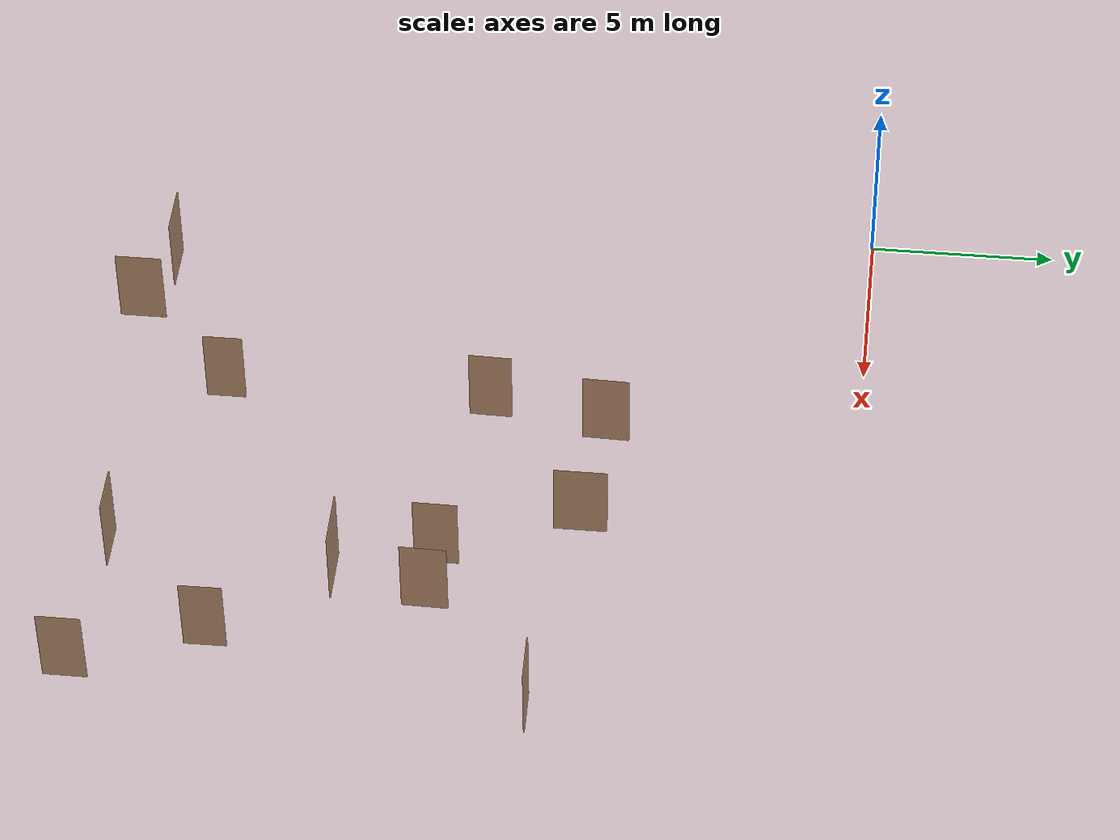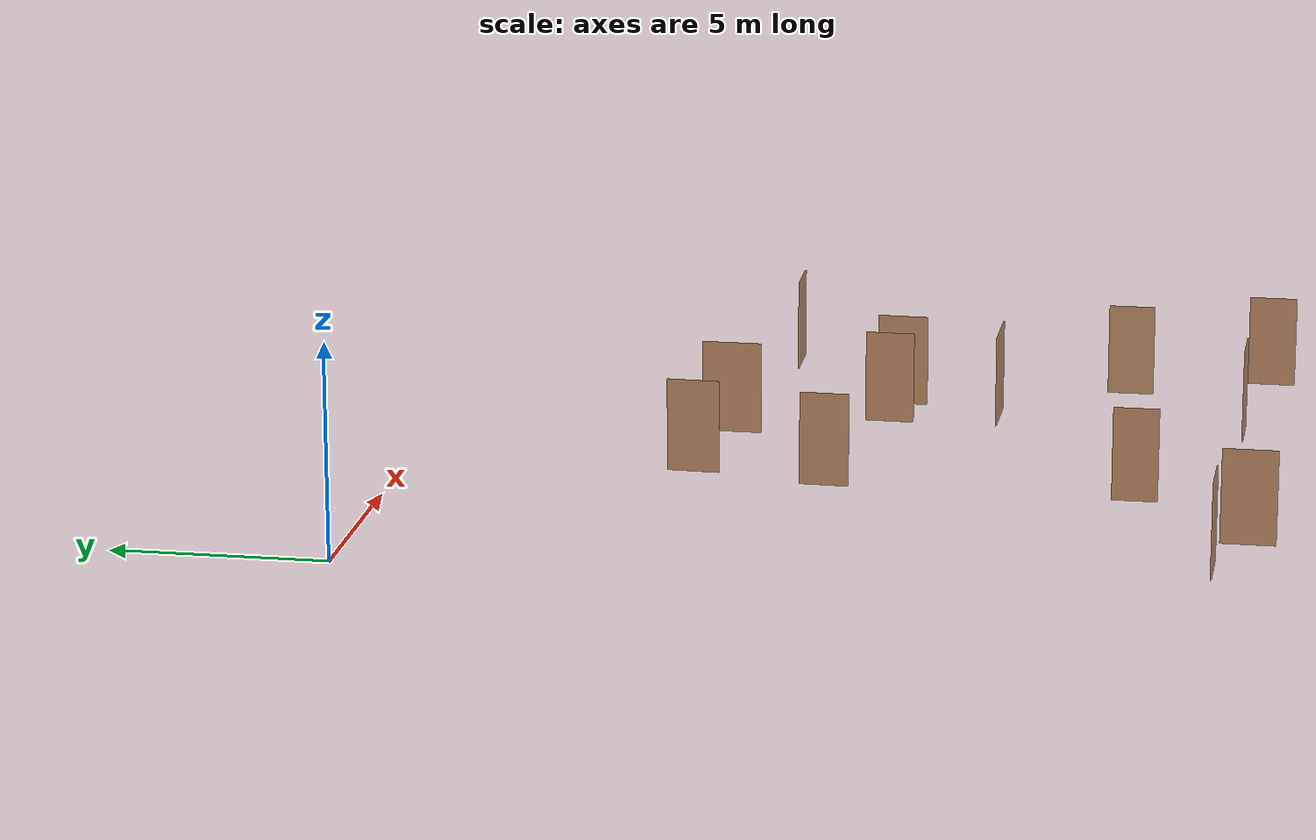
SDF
<sdf version="1.7">
 <world name="world">
  <scene><ambient>0.8 0.8 0.8 1.0</ambient><background>0 0 0</background><grid>false</grid></scene>
  <include><uri>model://sun</uri></include>
  <model name="door_kitchen">
   <pose>16.080245142462395 -16.25646027308161 0.0 0 0 -1.562457432607192</pose>
   <link name="right">
    <pose>0 0 1.11 0 0 0</pose>
    <visual name="right_visual">
     <geometry><box><size>1.109589746622178 0.03 2.2</size></box></geometry>
     <material><ambient>0.5 0.25 0 0.6</ambient><diffuse>0.5 0.25 0 0.6</diffuse></material>
    </visual>
    <collision name="right_collision">
     <geometry><box><size>1.109589746622178 0.03 2.2</size></box></geometry>
     <surface><contact><collide_bitmask>0x02</collide_bitmask></contact></surface>
    </collision>
    <inertial>
     <mass>50.0</mass>
     <inertia><ixx>20.17041666666667</ixx><iyy>25.296622524204462</iyy><izz>5.133705857537789</izz></inertia>
    </inertial>
   </link>
   <joint name="right_joint" type="revolute">
    <parent>world</parent>
    <child>right</child>
    <axis><xyz>0 0 -1</xyz><limit><lower>0</lower><upper>1.57</upper></limit></axis>
    <pose>0.559794873311089 0 0 0 0 0</pose>
   </joint>
   <plugin name="door" filename="libdoor.so">
    <v_max_door>0.5</v_max_door>
    <a_max_door>0.3</a_max_door>
    <a_nom_door>0.15</a_nom_door>
    <dx_min_door>0.01</dx_min_door>
    <f_max_door>500.0</f_max_door>
    <door name="door_kitchen" type="SwingDoor" left_joint_name="empty_joint" right_joint_name="right_joint"/>
   </plugin>
  </model>
  <model name="door_bathroom1">
   <pose>17.428003476694457 -19.630355640118523 0.0 0 0 1.5695099001705253</pose>
   <link name="right">
    <pose>0 0 1.11 0 0 0</pose>
    <visual name="right_visual">
     <geometry><box><size>1.145627315076036 0.03 2.2</size></box></geometry>
     <material><ambient>0.5 0.25 0 0.6</ambient><diffuse>0.5 0.25 0 0.6</diffuse></material>
    </visual>
    <collision name="right_collision">
     <geometry><box><size>1.145627315076036 0.03 2.2</size></box></geometry>
     <surface><contact><collide_bitmask>0x02</collide_bitmask></contact></surface>
    </collision>
    <inertial>
     <mass>50.0</mass>
     <inertia><ixx>20.17041666666667</ixx><iyy>25.635258104368035</iyy><izz>5.472341437701363</izz></inertia>
    </inertial>
   </link>
   <joint name="right_joint" type="revolute">
    <parent>world</parent>
    <child>right</child>
    <axis><xyz>0 0 -1</xyz><limit><lower>0</lower><upper>1.57</upper></limit></axis>
    <pose>0.577813657538018 0 0 0 0 0</pose>
   </joint>
   <plugin name="door" filename="libdoor.so">
    <v_max_door>0.5</v_max_door>
    <a_max_door>0.3</a_max_door>
    <a_nom_door>0.15</a_nom_door>
    <dx_min_door>0.01</dx_min_door>
    <f_max_door>500.0</f_max_door>
    <door name="door_bathroom1" type="SwingDoor" left_joint_name="empty_joint" right_joint_name="right_joint"/>
   </plugin>
  </model>
  <model name="door_warehouse1">
   <pose>7.325118281252149 -17.05888332344462 0.0 0 0 1.5707963267948966</pose>
   <link name="right">
    <pose>0 0 1.11 0 0 0</pose>
    <visual name="right_visual">
     <geometry><box><size>1.0544860697012142 0.03 2.2</size></box></geometry>
     <material><ambient>0.5 0.25 0 0.6</ambient><diffuse>0.5 0.25 0 0.6</diffuse></material>
    </visual>
    <collision name="right_collision">
     <geometry><box><size>1.0544860697012142 0.03 2.2</size></box></geometry>
     <surface><contact><collide_bitmask>0x02</collide_bitmask></contact></surface>
    </collision>
    <inertial>
     <mass>50.0</mass>
     <inertia><ixx>20.17041666666667</ixx><iyy>24.799753629974646</iyy><izz>4.6368369633079745</izz></inertia>
    </inertial>
   </link>
   <joint name="right_joint" type="revolute">
    <parent>world</parent>
    <child>right</child>
    <axis><xyz>0 0 -1</xyz><limit><lower>0</lower><upper>1.57</upper></limit></axis>
    <pose>0.5322430348506071 0 0 0 0 0</pose>
   </joint>
   <plugin name="door" filename="libdoor.so">
    <v_max_door>0.5</v_max_door>
    <a_max_door>0.3</a_max_door>
    <a_nom_door>0.15</a_nom_door>
    <dx_min_door>0.01</dx_min_door>
    <f_max_door>500.0</f_max_door>
    <door name="door_warehouse1" type="SwingDoor" left_joint_name="empty_joint" right_joint_name="right_joint"/>
   </plugin>
  </model>
  <model name="door_warehouse2">
   <pose>7.365881657643422 -9.8875816241503 0.0 0 0 -1.5939307383721164</pose>
   <link name="right">
    <pose>0 0 1.11 0 0 0</pose>
    <visual name="right_visual">
     <geometry><box><size>1.145935674024048 0.03 2.2</size></box></geometry>
     <material><ambient>0.5 0.25 0 0.6</ambient><diffuse>0.5 0.25 0 0.6</diffuse></material>
    </visual>
    <collision name="right_collision">
     <geometry><box><size>1.145935674024048 0.03 2.2</size></box></geometry>
     <surface><contact><collide_bitmask>0x02</collide_bitmask></contact></surface>
    </collision>
    <inertial>
     <mass>50.0</mass>
     <inertia><ixx>20.17041666666667</ixx><iyy>25.638202370837295</iyy><izz>5.475285704170623</izz></inertia>
    </inertial>
   </link>
   <joint name="right_joint" type="revolute">
    <parent>world</parent>
    <child>right</child>
    <axis><xyz>0 0 -1</xyz><limit><lower>0</lower><upper>1.57</upper></limit></axis>
    <pose>0.577967837012024 0 0 0 0 0</pose>
   </joint>
   <plugin name="door" filename="libdoor.so">
    <v_max_door>0.5</v_max_door>
    <a_max_door>0.3</a_max_door>
    <a_nom_door>0.15</a_nom_door>
    <dx_min_door>0.01</dx_min_door>
    <f_max_door>500.0</f_max_door>
    <door name="door_warehouse2" type="SwingDoor" left_joint_name="empty_joint" right_joint_name="right_joint"/>
   </plugin>
  </model>
  <model name="door_mini_rrl">
   <pose>11.262049732117953 -7.104056498998965 0.0 0 0 1.5709644434662853</pose>
   <link name="right">
    <pose>0 0 1.11 0 0 0</pose>
    <visual name="right_visual">
     <geometry><box><size>1.4048548915879961 0.03 2.2</size></box></geometry>
     <material><ambient>0.5 0.25 0 0.6</ambient><diffuse>0.5 0.25 0 0.6</diffuse></material>
    </visual>
    <collision name="right_collision">
     <geometry><box><size>1.4048548915879961 0.03 2.2</size></box></geometry>
     <surface><contact><collide_bitmask>0x02</collide_bitmask></contact></surface>
    </collision>
    <inertial>
     <mass>50.0</mass>
     <inertia><ixx>20.17041666666667</ixx><iyy>28.39007194341134</iyy><izz>8.227155276744668</izz></inertia>
    </inertial>
   </link>
   <joint name="right_joint" type="revolute">
    <parent>world</parent>
    <child>right</child>
    <axis><xyz>0 0 -1</xyz><limit><lower>0</lower><upper>1.57</upper></limit></axis>
    <pose>0.7074274457939981 0 0 0 0 0</pose>
   </joint>
   <plugin name="door" filename="libdoor.so">
    <v_max_door>0.5</v_max_door>
    <a_max_door>0.3</a_max_door>
    <a_nom_door>0.15</a_nom_door>
    <dx_min_door>0.01</dx_min_door>
    <f_max_door>500.0</f_max_door>
    <door name="door_mini_rrl" type="SwingDoor" left_joint_name="empty_joint" right_joint_name="right_joint"/>
   </plugin>
  </model>
  <model name="door_office">
   <pose>7.937768141452234 -6.737632100278285 0.0 0 0 1.5431487698929705</pose>
   <link name="right">
    <pose>0 0 1.11 0 0 0</pose>
    <visual name="right_visual">
     <geometry><box><size>1.23763989223551 0.03 2.2</size></box></geometry>
     <material><ambient>0.5 0.25 0 0.6</ambient><diffuse>0.5 0.25 0 0.6</diffuse></material>
    </visual>
    <collision name="right_collision">
     <geometry><box><size>1.23763989223551 0.03 2.2</size></box></geometry>
     <surface><contact><collide_bitmask>0x02</collide_bitmask></contact></surface>
    </collision>
    <inertial>
     <mass>50.0</mass>
     <inertia><ixx>20.17041666666667</ixx><iyy>26.548968761886357</iyy><izz>6.3860520952196875</izz></inertia>
    </inertial>
   </link>
   <joint name="right_joint" type="revolute">
    <parent>world</parent>
    <child>right</child>
    <axis><xyz>0 0 -1</xyz><limit><lower>0</lower><upper>1.57</upper></limit></axis>
    <pose>0.623819946117755 0 0 0 0 0</pose>
   </joint>
   <plugin name="door" filename="libdoor.so">
    <v_max_door>0.5</v_max_door>
    <a_max_door>0.3</a_max_door>
    <a_nom_door>0.15</a_nom_door>
    <dx_min_door>0.01</dx_min_door>
    <f_max_door>500.0</f_max_door>
    <door name="door_office" type="SwingDoor" left_joint_name="empty_joint" right_joint_name="right_joint"/>
   </plugin>
  </model>
  <model name="door_recordings">
   <pose>17.571492940198677 -7.8671334262709545 0.0 0 0 -3.123409491376528</pose>
   <link name="right">
    <pose>0 0 1.11 0 0 0</pose>
    <visual name="right_visual">
     <geometry><box><size>1.2818565879323982 0.03 2.2</size></box></geometry>
     <material><ambient>0.5 0.25 0 0.6</ambient><diffuse>0.5 0.25 0 0.6</diffuse></material>
    </visual>
    <collision name="right_collision">
     <geometry><box><size>1.2818565879323982 0.03 2.2</size></box></geometry>
     <surface><contact><collide_bitmask>0x02</collide_bitmask></contact></surface>
    </collision>
    <inertial>
     <mass>50.0</mass>
     <inertia><ixx>20.17041666666667</ixx><iyy>27.013151300107047</iyy><izz>6.850234633440376</izz></inertia>
    </inertial>
   </link>
   <joint name="right_joint" type="revolute">
    <parent>world</parent>
    <child>right</child>
    <axis><xyz>0 0 -1</xyz><limit><lower>0</lower><upper>1.57</upper></limit></axis>
    <pose>0.6459282939661991 0 0 0 0 0</pose>
   </joint>
   <plugin name="door" filename="libdoor.so">
    <v_max_door>0.5</v_max_door>
    <a_max_door>0.3</a_max_door>
    <a_nom_door>0.15</a_nom_door>
    <dx_min_door>0.01</dx_min_door>
    <f_max_door>500.0</f_max_door>
    <door name="door_recordings" type="SwingDoor" left_joint_name="empty_joint" right_joint_name="right_joint"/>
   </plugin>
  </model>
  <model name="door_closet">
   <pose>2.567656634711677 -19.15182947860628 0.0 0 0 3.141165260570925</pose>
   <link name="right">
    <pose>0 0 1.11 0 0 0</pose>
    <visual name="right_visual">
     <geometry><box><size>1.3813464334366092 0.03 2.2</size></box></geometry>
     <material><ambient>0.5 0.25 0 0.6</ambient><diffuse>0.5 0.25 0 0.6</diffuse></material>
    </visual>
    <collision name="right_collision">
     <geometry><box><size>1.3813464334366092 0.03 2.2</size></box></geometry>
     <surface><contact><collide_bitmask>0x02</collide_bitmask></contact></surface>
    </collision>
    <inertial>
     <mass>50.0</mass>
     <inertia><ixx>20.17041666666667</ixx><iyy>28.117158204866843</iyy><izz>7.95424153820017</izz></inertia>
    </inertial>
   </link>
   <joint name="right_joint" type="revolute">
    <parent>world</parent>
    <child>right</child>
    <axis><xyz>0 0 -1</xyz><limit><lower>0</lower><upper>1.57</upper></limit></axis>
    <pose>0.6956732167183046 0 0 0 0 0</pose>
   </joint>
   <plugin name="door" filename="libdoor.so">
    <v_max_door>0.5</v_max_door>
    <a_max_door>0.3</a_max_door>
    <a_nom_door>0.15</a_nom_door>
    <dx_min_door>0.01</dx_min_door>
    <f_max_door>500.0</f_max_door>
    <door name="door_closet" type="SwingDoor" left_joint_name="empty_joint" right_joint_name="right_joint"/>
   </plugin>
  </model>
  <model name="door_rrl">
   <pose>12.727222051301975 -10.716377478932754 0.0 0 0 1.5616494156602039</pose>
   <link name="right">
    <pose>0 0 1.11 0 0 0</pose>
    <visual name="right_visual">
     <geometry><box><size>1.1623851166268635 0.03 2.2</size></box></geometry>
     <material><ambient>0.5 0.25 0 0.6</ambient><diffuse>0.5 0.25 0 0.6</diffuse></material>
    </visual>
    <collision name="right_collision">
     <geometry><box><size>1.1623851166268635 0.03 2.2</size></box></geometry>
     <surface><contact><collide_bitmask>0x02</collide_bitmask></contact></surface>
    </collision>
    <inertial>
     <mass>50.0</mass>
     <inertia><ixx>20.17041666666667</ixx><iyy>25.796413163981867</iyy><izz>5.633496497315196</izz></inertia>
    </inertial>
   </link>
   <joint name="right_joint" type="revolute">
    <parent>world</parent>
    <child>right</child>
    <axis><xyz>0 0 -1</xyz><limit><lower>0</lower><upper>1.57</upper></limit></axis>
    <pose>0.5861925583134318 0 0 0 0 0</pose>
   </joint>
   <plugin name="door" filename="libdoor.so">
    <v_max_door>0.5</v_max_door>
    <a_max_door>0.3</a_max_door>
    <a_nom_door>0.15</a_nom_door>
    <dx_min_door>0.01</dx_min_door>
    <f_max_door>500.0</f_max_door>
    <door name="door_rrl" type="SwingDoor" left_joint_name="empty_joint" right_joint_name="right_joint"/>
   </plugin>
  </model>
  <model name="door_cafeteria">
   <pose>13.459129316830579 -13.296819125933453 0.0 0 0 0.00034506554875947566</pose>
   <link name="right">
    <pose>0 0 1.11 0 0 0</pose>
    <visual name="right_visual">
     <geometry><box><size>1.5409707459290378 0.03 2.2</size></box></geometry>
     <material><ambient>0.5 0.25 0 0.6</ambient><diffuse>0.5 0.25 0 0.6</diffuse></material>
    </visual>
    <collision name="right_collision">
     <geometry><box><size>1.5409707459290378 0.03 2.2</size></box></geometry>
     <surface><contact><collide_bitmask>0x02</collide_bitmask></contact></surface>
    </collision>
    <inertial>
     <mass>50.0</mass>
     <inertia><ixx>20.17041666666667</ixx><iyy>30.060795165871237</iyy><izz>9.897878499204564</izz></inertia>
    </inertial>
   </link>
   <joint name="right_joint" type="revolute">
    <parent>world</parent>
    <child>right</child>
    <axis><xyz>0 0 -1</xyz><limit><lower>0</lower><upper>1.57</upper></limit></axis>
    <pose>0.7754853729645189 0 0 0 0 0</pose>
   </joint>
   <plugin name="door" filename="libdoor.so">
    <v_max_door>0.5</v_max_door>
    <a_max_door>0.3</a_max_door>
    <a_nom_door>0.15</a_nom_door>
    <dx_min_door>0.01</dx_min_door>
    <f_max_door>500.0</f_max_door>
    <door name="door_cafeteria" type="SwingDoor" left_joint_name="empty_joint" right_joint_name="right_joint"/>
   </plugin>
  </model>
  <model name="door_bathroom2">
   <pose>4.527856701036794 -19.8008224706388 0.0 0 0 -1.5707963267948966</pose>
   <link name="right">
    <pose>0 0 1.11 0 0 0</pose>
    <visual name="right_visual">
     <geometry><box><size>1.2545269131443122 0.03 2.2</size></box></geometry>
     <material><ambient>0.5 0.25 0 0.6</ambient><diffuse>0.5 0.25 0 0.6</diffuse></material>
    </visual>
    <collision name="right_collision">
     <geometry><box><size>1.2545269131443122 0.03 2.2</size></box></geometry>
     <surface><contact><collide_bitmask>0x02</collide_bitmask></contact></surface>
    </collision>
    <inertial>
     <mass>50.0</mass>
     <inertia><ixx>20.17041666666667</ixx><iyy>26.72432406584749</iyy><izz>6.561407399180819</izz></inertia>
    </inertial>
   </link>
   <joint name="right_joint" type="revolute">
    <parent>world</parent>
    <child>right</child>
    <axis><xyz>0 0 -1</xyz><limit><lower>0</lower><upper>1.57</upper></limit></axis>
    <pose>0.6322634565721561 0 0 0 0 0</pose>
   </joint>
   <plugin name="door" filename="libdoor.so">
    <v_max_door>0.5</v_max_door>
    <a_max_door>0.3</a_max_door>
    <a_nom_door>0.15</a_nom_door>
    <dx_min_door>0.01</dx_min_door>
    <f_max_door>500.0</f_max_door>
    <door name="door_bathroom2" type="SwingDoor" left_joint_name="empty_joint" right_joint_name="right_joint"/>
   </plugin>
  </model>
  <model name="door_servers">
   <pose>14.277994487649003 -10.834891569593305 0.0 0 0 -1.589951878239416</pose>
   <link name="right">
    <pose>0 0 1.11 0 0 0</pose>
    <visual name="right_visual">
     <geometry><box><size>1.2142160836735563 0.03 2.2</size></box></geometry>
     <material><ambient>0.5 0.25 0 0.6</ambient><diffuse>0.5 0.25 0 0.6</diffuse></material>
    </visual>
    <collision name="right_collision">
     <geometry><box><size>1.2142160836735563 0.03 2.2</size></box></geometry>
     <surface><contact><collide_bitmask>0x02</collide_bitmask></contact></surface>
    </collision>
    <inertial>
     <mass>50.0</mass>
     <inertia><ixx>20.17041666666667</ixx><iyy>26.30966957438146</iyy><izz>6.146752907714786</izz></inertia>
    </inertial>
   </link>
   <joint name="right_joint" type="revolute">
    <parent>world</parent>
    <child>right</child>
    <axis><xyz>0 0 -1</xyz><limit><lower>0</lower><upper>1.57</upper></limit></axis>
    <pose>0.6121080418367781 0 0 0 0 0</pose>
   </joint>
   <plugin name="door" filename="libdoor.so">
    <v_max_door>0.5</v_max_door>
    <a_max_door>0.3</a_max_door>
    <a_nom_door>0.15</a_nom_door>
    <dx_min_door>0.01</dx_min_door>
    <f_max_door>500.0</f_max_door>
    <door name="door_servers" type="SwingDoor" left_joint_name="empty_joint" right_joint_name="right_joint"/>
   </plugin>
  </model>
  <model name="door_entrance">
   <pose>13.026440893176261 -19.214922027623263 0.0 0 0 0.0</pose>
   <link name="right">
    <pose>0 0 1.11 0 0 0</pose>
    <visual name="right_visual">
     <geometry><box><size>1.2890365354624291 0.03 2.2</size></box></geometry>
     <material><ambient>0.5 0.25 0 0.6</ambient><diffuse>0.5 0.25 0 0.6</diffuse></material>
    </visual>
    <collision name="right_collision">
     <geometry><box><size>1.2890365354624291 0.03 2.2</size></box></geometry>
     <surface><contact><collide_bitmask>0x02</collide_bitmask></contact></surface>
    </collision>
    <inertial>
     <mass>50.0</mass>
     <inertia><ixx>20.17041666666667</ixx><iyy>27.090063290654097</iyy><izz>6.927146623987427</izz></inertia>
    </inertial>
   </link>
   <joint name="right_joint" type="revolute">
    <parent>world</parent>
    <child>right</child>
    <axis><xyz>0 0 -1</xyz><limit><lower>0</lower><upper>1.57</upper></limit></axis>
    <pose>0.6495182677312146 0 0 0 0 0</pose>
   </joint>
   <plugin name="door" filename="libdoor.so">
    <v_max_door>0.5</v_max_door>
    <a_max_door>0.3</a_max_door>
    <a_nom_door>0.15</a_nom_door>
    <dx_min_door>0.01</dx_min_door>
    <f_max_door>500.0</f_max_door>
    <door name="door_entrance" type="SwingDoor" left_joint_name="empty_joint" right_joint_name="right_joint"/>
   </plugin>
  </model>
  <rmf_charger_waypoints name="charger_waypoints">
   <rmf_vertex name="cleaner_charging_station" x="18.981144609116733" y="-14.123057978258101" level="L1"/>
  </rmf_charger_waypoints>
 </world>
</sdf>
